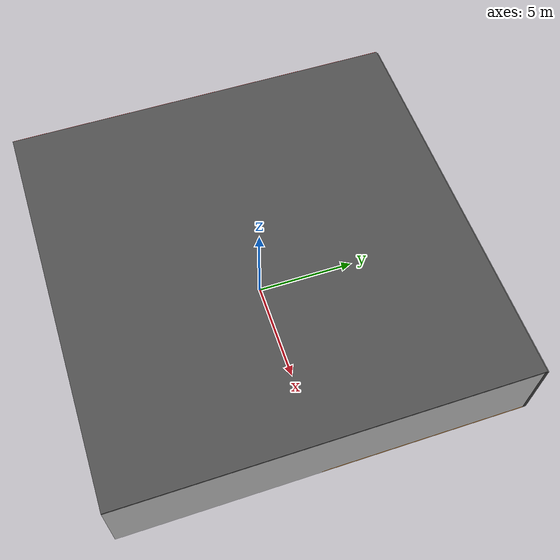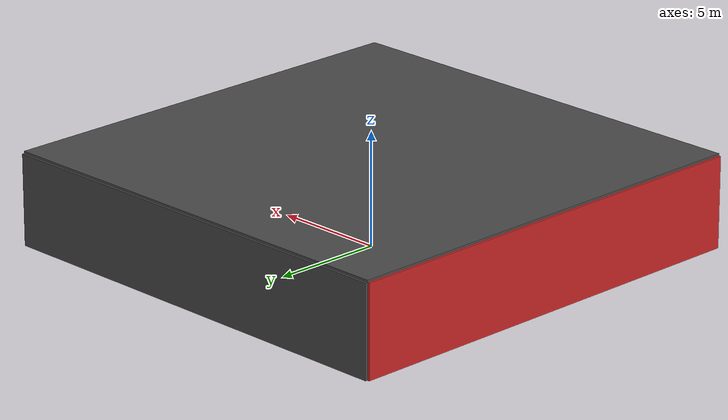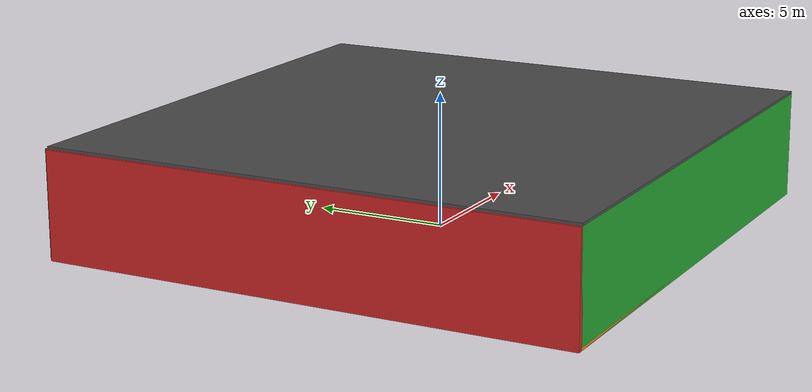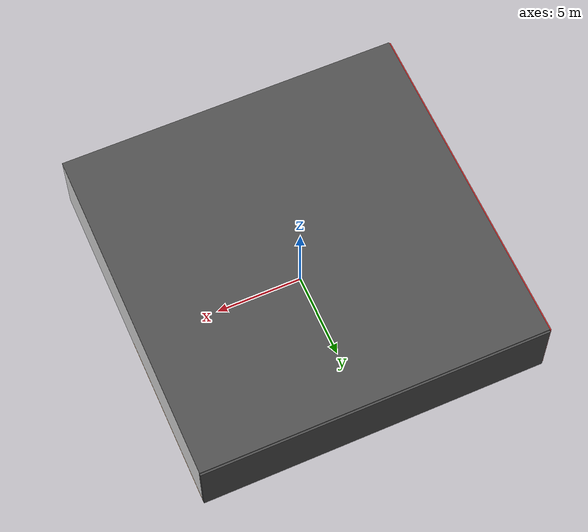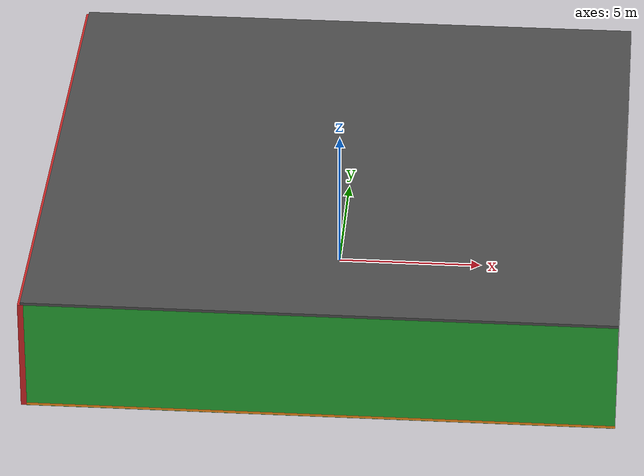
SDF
<sdf version="1.4">
 <world name="default">
  <physics type="ode">
   <max_step_size>0.001</max_step_size>
   <real_time_factor>1</real_time_factor>
   <real_time_update_rate>1000</real_time_update_rate>
   <gravity>0 0 -9.8</gravity>
  </physics>
  <scene><ambient>0.4 0.4 0.4 1</ambient><background>0.7 0.7 0.7 1</background><shadows>1</shadows></scene>
  <model name="Surrounding">
   <static>1</static>
   <link name="Ceiling">
    <collision name="Ceiling_Collision"><geometry><box><size>20 20 0.1</size></box></geometry></collision>
    <visual name="Ceiling_Visual">
     <geometry><box><size>20 20 0.1</size></box></geometry>
     <material>
      <script><uri>file://media/materials/scripts/gazebo.material</uri><name>Gazebo/DarkGrey</name></script>
     </material>
    </visual>
    <pose>0 0 4.05 0 0 0</pose>
   </link>
   <link name="Wall_South">
    <collision name="Wall_South_Collision">
     <geometry><box><size>20 0 4</size></box></geometry>
     <pose>0 0 2 0 -0 0</pose>
    </collision>
    <visual name="Wall_South_Visual">
     <pose>0 0 2 0 -0 0</pose>
     <geometry><box><size>20 0 4</size></box></geometry>
     <material>
      <script><uri>file://media/materials/scripts/gazebo.material</uri><name>Gazebo/GreenGlow</name></script>
     </material>
    </visual>
    <velocity_decay><linear>0</linear><angular>0</angular></velocity_decay>
    <pose>0 -10 0 0 -0 0</pose>
   </link>
   <link name="Wall_East">
    <collision name="Wall_21_Collision">
     <geometry><box><size>20 0 4</size></box></geometry>
     <pose>0 0 2 0 -0 0</pose>
    </collision>
    <visual name="Wall_21_Visual">
     <pose>0 0 2 0 -0 0</pose>
     <geometry><box><size>20 0 4</size></box></geometry>
     <material>
      <script><uri>file://media/materials/scripts/gazebo.material</uri><name>Gazebo/White</name></script>
     </material>
    </visual>
    <velocity_decay><linear>0</linear><angular>0</angular></velocity_decay>
    <pose>10 0 0 0 -0 1.5708</pose>
   </link>
   <link name="Wall_North">
    <collision name="Wall_22_Collision">
     <geometry><box><size>20 0.2 4</size></box></geometry>
     <pose>0 0 2 0 -0 0</pose>
    </collision>
    <visual name="Wall_22_Visual">
     <pose>0 0 2 0 -0 0</pose>
     <geometry><box><size>20 0.2 4</size></box></geometry>
     <material>
      <script><uri>file://media/materials/scripts/gazebo.material</uri><name>Gazebo/DarkGrey</name></script>
     </material>
    </visual>
    <velocity_decay><linear>0</linear><angular>0</angular></velocity_decay>
    <pose>0 10 0 0 -0 0</pose>
   </link>
   <link name="Wall_West">
    <collision name="Wall_23_Collision">
     <geometry><box><size>20 0.2 4</size></box></geometry>
     <pose>0 0 2 0 -0 0</pose>
    </collision>
    <visual name="Wall_23_Visual">
     <pose>0 0 2 0 -0 0</pose>
     <geometry><box><size>20 0.2 4</size></box></geometry>
     <material>
      <script><uri>file://media/materials/scripts/gazebo.material</uri><name>Gazebo/RedBright</name></script>
     </material>
    </visual>
    <velocity_decay><linear>0</linear><angular>0</angular></velocity_decay>
    <pose>-10 0 0 0 0 -1.5708</pose>
   </link>
   <link name="Ground_link">
    <collision name="collision">
     <pose>0 0 .05 0 -0 0</pose>
     <geometry><box><size>20 20 0.1</size></box></geometry>
    </collision>
    <visual name="visual">
     <pose>0 0 .05 0 -0 0</pose>
     <geometry><box><size>20 20 0.1</size></box></geometry>
     <material>
      <script><uri>file://media/materials/scripts/gazebo.material</uri><name>Gazebo/Orange</name></script>
     </material>
    </visual>
   </link>
   <static>1</static>
  </model>
  <spherical_coordinates>
   <surface_model>EARTH_WGS84</surface_model>
   <latitude_deg>0</latitude_deg>
   <longitude_deg>0</longitude_deg>
   <elevation>0</elevation>
   <heading_deg>0</heading_deg>
  </spherical_coordinates>
  <light name="lightball_0" type="diffuse">
   <diffuse>0.8 0.8 0.8 1</diffuse>
   <specular>0.2 0.2 0.2 1</specular>
   <attenuation>
    <range>100</range>
    <constant>0.7</constant>
    <linear>0.01</linear>
    <quadratic>0.001</quadratic>
   </attenuation>
   <direction>-0.5 0.1 -0.9</direction>
   <pose>4.00609678619 2.8762653523 0.688095722436 0 0 0</pose>
  </light>
  <light name="lightball_1" type="diffuse">
   <diffuse>0.8 0.8 0.8 1</diffuse>
   <specular>0.2 0.2 0.2 1</specular>
   <attenuation>
    <range>100</range>
    <constant>0.7</constant>
    <linear>0.01</linear>
    <quadratic>0.001</quadratic>
   </attenuation>
   <direction>-0.5 0.1 -0.9</direction>
   <pose>6.72041156492 0.78073367421 0.894961322288 0 0 0</pose>
  </light>
  <light name="lightball_2" type="diffuse">
   <diffuse>0.8 0.8 0.8 1</diffuse>
   <specular>0.2 0.2 0.2 1</specular>
   <attenuation>
    <range>100</range>
    <constant>0.7</constant>
    <linear>0.01</linear>
    <quadratic>0.001</quadratic>
   </attenuation>
   <direction>-0.5 0.1 -0.9</direction>
   <pose>-5.54089511228 -1.04385035221 0.627765740988 0 0 0</pose>
  </light>
  <light name="lightball_3" type="diffuse">
   <diffuse>0.8 0.8 0.8 1</diffuse>
   <specular>0.2 0.2 0.2 1</specular>
   <attenuation>
    <range>100</range>
    <constant>0.7</constant>
    <linear>0.01</linear>
    <quadratic>0.001</quadratic>
   </attenuation>
   <direction>-0.5 0.1 -0.9</direction>
   <pose>-7.26771894444 9.42980782986 2.75215830455 0 0 0</pose>
  </light>
  <light name="lightball_4" type="diffuse">
   <diffuse>0.8 0.8 0.8 1</diffuse>
   <specular>0.2 0.2 0.2 1</specular>
   <attenuation>
    <range>100</range>
    <constant>0.7</constant>
    <linear>0.01</linear>
    <quadratic>0.001</quadratic>
   </attenuation>
   <direction>-0.5 0.1 -0.9</direction>
   <pose>9.01798600657 5.12374882458 0.663921608846 0 0 0</pose>
  </light>
  <light name="lightball_5" type="diffuse">
   <diffuse>0.8 0.8 0.8 1</diffuse>
   <specular>0.2 0.2 0.2 1</specular>
   <attenuation>
    <range>100</range>
    <constant>0.7</constant>
    <linear>0.01</linear>
    <quadratic>0.001</quadratic>
   </attenuation>
   <direction>-0.5 0.1 -0.9</direction>
   <pose>-4.37158137455 6.44822008992 0.920951180694 0 0 0</pose>
  </light>
  <light name="lightball_6" type="diffuse">
   <diffuse>0.8 0.8 0.8 1</diffuse>
   <specular>0.2 0.2 0.2 1</specular>
   <attenuation>
    <range>100</range>
    <constant>0.7</constant>
    <linear>0.01</linear>
    <quadratic>0.001</quadratic>
   </attenuation>
   <direction>-0.5 0.1 -0.9</direction>
   <pose>0.152363953623 6.31997204235 0.631820503228 0 0 0</pose>
  </light>
  <light name="lightball_7" type="diffuse">
   <diffuse>0.8 0.8 0.8 1</diffuse>
   <specular>0.2 0.2 0.2 1</specular>
   <attenuation>
    <range>100</range>
    <constant>0.7</constant>
    <linear>0.01</linear>
    <quadratic>0.001</quadratic>
   </attenuation>
   <direction>-0.5 0.1 -0.9</direction>
   <pose>-3.60218494393 -9.64158496442 1.43817711422 0 0 0</pose>
  </light>
  <light name="lightball_8" type="diffuse">
   <diffuse>0.8 0.8 0.8 1</diffuse>
   <specular>0.2 0.2 0.2 1</specular>
   <attenuation>
    <range>100</range>
    <constant>0.7</constant>
    <linear>0.01</linear>
    <quadratic>0.001</quadratic>
   </attenuation>
   <direction>-0.5 0.1 -0.9</direction>
   <pose>-1.75035135193 -4.1221512394 3.87434479736 0 0 0</pose>
  </light>
  <light name="lightball_9" type="diffuse">
   <diffuse>0.8 0.8 0.8 1</diffuse>
   <specular>0.2 0.2 0.2 1</specular>
   <attenuation>
    <range>100</range>
    <constant>0.7</constant>
    <linear>0.01</linear>
    <quadratic>0.001</quadratic>
   </attenuation>
   <direction>-0.5 0.1 -0.9</direction>
   <pose>4.96110308765 -2.5389986383 1.77991056622 0 0 0</pose>
  </light>
  <light name="lightball_10" type="diffuse">
   <diffuse>0.8 0.8 0.8 1</diffuse>
   <specular>0.2 0.2 0.2 1</specular>
   <attenuation>
    <range>100</range>
    <constant>0.7</constant>
    <linear>0.01</linear>
    <quadratic>0.001</quadratic>
   </attenuation>
   <direction>-0.5 0.1 -0.9</direction>
   <pose>7.15731434422 -5.58245631579 2.44573751419 0 0 0</pose>
  </light>
  <light name="lightball_11" type="diffuse">
   <diffuse>0.8 0.8 0.8 1</diffuse>
   <specular>0.2 0.2 0.2 1</specular>
   <attenuation>
    <range>100</range>
    <constant>0.7</constant>
    <linear>0.01</linear>
    <quadratic>0.001</quadratic>
   </attenuation>
   <direction>-0.5 0.1 -0.9</direction>
   <pose>-6.0651350028 -6.65594454023 2.83419362577 0 0 0</pose>
  </light>
  <include><uri>model://cabinet</uri><pose>-5.16515225028 -8.10333283818 0 0 0 1.18944851041</pose></include>
  <include>
   <uri>model://textured_shapes</uri>
   <pose>-1.60490265087 4.46441237157 0 0 0 0.911258551466</pose>
  </include>
  <include>
   <uri>model://construction_cone</uri>
   <pose>4.96251746328 3.71475502729 0 0 0 0.036668751402</pose>
  </include>
  <include>
   <uri>model://textured_shapes</uri>
   <pose>4.10895661477 7.07999344995 0 0 0 0.281201449959</pose>
  </include>
  <include>
   <uri>model://robocup_3Dsim_goal</uri>
   <pose>8.04489338907 -7.57520077507 0 0 0 0.505431647461</pose>
  </include>
 </world>
</sdf>

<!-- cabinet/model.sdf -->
<sdf version="1.5">
  <model name="cabinet">
    <static>true</static>
    <link name="cabinet_bottom_plate">
      <inertial>
        <pose>0 0 -1 0 0 0</pose>
        <inertia>
          <ixx>2.050000</ixx>
          <ixy>0</ixy>
          <ixz>0</ixz>
          <iyy>2.050000</iyy>
          <iyz>0</iyz>
          <izz>2.050000</izz>
        </inertia>
        <mass>25.000000</mass>
      </inertial>
      <collision name="cabinet_bottom_plate_geom">
        <pose>0 0 0.010000 0 0 0</pose>
        <geometry>
          <box>
            <size>0.450000 0.450000 0.020000</size>
          </box>
        </geometry>
      </collision>
      <visual name="cabinet_bottom_plate_geom_visual">
        <pose>0 0 0.010000 0 0 0</pose>
        <geometry>
          <box>
            <size>0.450000 0.450000 0.020000</size>
          </box>
        </geometry>
        <material>
          <script>
            <uri>model://media/materials/scripts/gazebo.material</uri>
            <name>Gazebo/Wood</name>
          </script>
        </material>
      </visual>
      <collision name="cabinet_bottom_plate_geom_cabinet_back_plate">
        <pose>0.235000 0 0.510000 0 0 0</pose>
        <geometry>
          <box>
            <size>0.020000 0.450000 1.020000</size>
          </box>
        </geometry>
      </collision>
      <visual name="cabinet_bottom_plate_geom_cabinet_back_plate_visual">
        <pose>0.235000 0 0.510000 0 0 0</pose>
        <geometry>
          <box>
            <size>0.020000 0.450000 1.020000</size>
          </box>
        </geometry>
        <material>
          <script>
            <uri>model://media/materials/scripts/gazebo.material</uri>
            <name>Gazebo/Wood</name>
          </script>
        </material>
      </visual>
      <collision name="cabinet_bottom_plate_geom_cabinet_left_plate">
        <pose>0 0.235000 0.510000 0 0 0</pose>
        <geometry>
          <box>
            <size>0.450000 0.020000 1.020000</size>
          </box>
        </geometry>
      </collision>
      <visual name="cabinet_bottom_plate_geom_cabinet_left_plate_visual">
        <pose>0 0.235000 0.510000 0 0 0</pose>
        <geometry>
          <box>
            <size>0.450000 0.020000 1.020000</size>
          </box>
        </geometry>
        <material>
          <script>
            <uri>model://media/materials/scripts/gazebo.material</uri>
            <name>Gazebo/Wood</name>
          </script>
        </material>
      </visual>
      <collision name="cabinet_bottom_plate_geom_cabinet_middle_plate">
        <pose>0 0 0.510000 0 0 0</pose>
        <geometry>
          <box>
            <size>0.450000 0.450000 0.020000</size>
          </box>
        </geometry>
      </collision>
      <visual name="cabinet_bottom_plate_geom_cabinet_middle_plate_visual">
        <pose>0 0 0.510000 0 0 0</pose>
        <geometry>
          <box>
            <size>0.450000 0.450000 0.020000</size>
          </box>
        </geometry>
        <material>
          <script>
            <uri>model://media/materials/scripts/gazebo.material</uri>
            <name>Gazebo/Wood</name>
          </script>
        </material>
      </visual>
      <collision name="cabinet_bottom_plate_geom_cabinet_right_plate">
        <pose>0 -0.235000 0.510000 0 0 0</pose>
        <geometry>
          <box>
            <size>0.450000 0.020000 1.020000</size>
          </box>
        </geometry>
      </collision>
      <visual name="cabinet_bottom_plate_geom_cabinet_right_plate_visual">
        <pose>0 -0.235000 0.510000 0 0 0</pose>
        <geometry>
          <box>
            <size>0.450000 0.020000 1.020000</size>
          </box>
        </geometry>
        <material>
          <script>
            <uri>model://media/materials/scripts/gazebo.material</uri>
            <name>Gazebo/Wood</name>
          </script>
        </material>
      </visual>
      <collision name="cabinet_bottom_plate_geom_cabinet_top_plate">
        <pose>0 0 1.010000 0 0 0</pose>
        <geometry>
          <box>
            <size>0.450000 0.450000 0.020000</size>
          </box>
        </geometry>
      </collision>
      <visual name="cabinet_bottom_plate_geom_cabinet_top_plate_visual">
        <pose>0 0 1.010000 0 0 0</pose>
        <geometry>
          <box>
            <size>0.450000 0.450000 0.020000</size>
          </box>
        </geometry>
        <material>
          <script>
            <uri>model://media/materials/scripts/gazebo.material</uri>
            <name>Gazebo/Wood</name>
          </script>
        </material>
      </visual>
    </link>
  </model>
</sdf>

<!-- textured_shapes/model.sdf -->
<sdf version="1.6">
  <model name="textured_shapes">
    <pose>0 0 0.5 0 0 0</pose>
    <link name="box">
      <pose>0 -1.5 0 0 0 0</pose>
      <collision name="collision">
        <geometry>
          <box>
            <size>1 1 1</size>
          </box>
        </geometry>
      </collision>
      <visual name="visual">
        <geometry>
          <box>
            <size>1 1 1</size>
          </box>
        </geometry>
        <material>
          <script>
            <uri>model://../model_source/models/textured_shapes/materials/scripts</uri>
            <uri>model://../model_source/models/textured_shapes/materials/textures</uri>
            <name>TexturedShape/Squares</name>
          </script>
        </material>
      </visual>
    </link>
    <link name="sphere">
      <collision name="collision">
        <geometry>
          <sphere>
            <radius>0.5</radius>
          </sphere>
        </geometry>
      </collision>
      <visual name="visual">
        <geometry>
          <sphere>
            <radius>0.5</radius>
          </sphere>
        </geometry>
        <material>
          <script>
            <uri>model://../model_source/models/textured_shapes/materials/scripts</uri>
            <uri>model://../model_source/models/textured_shapes/materials/textures</uri>
            <name>TexturedShape/Squares</name>
          </script>
        </material>
      </visual>
    </link>
    <link name="cylinder">
      <pose>0 1.5 0 0 0 0</pose>
      <collision name="collision">
        <geometry>
          <cylinder>
            <radius>0.5</radius>
            <length>1</length>
          </cylinder>
        </geometry>
      </collision>
      <visual name="visual">
        <geometry>
          <cylinder>
            <radius>0.5</radius>
            <length>1</length>
          </cylinder>
        </geometry>
        <material>
          <script>
            <uri>model://../model_source/models/textured_shapes/materials/scripts</uri>
            <uri>model://../model_source/models/textured_shapes/materials/textures</uri>
            <name>TexturedShape/Squares</name>
          </script>
        </material>
      </visual>
    </link>
  </model>
</sdf>

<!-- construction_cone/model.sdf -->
<sdf version="1.5">
  <model name="Construction Cone">
    <link name="link">
      <collision name="collision">
        <geometry>
          <mesh>
            <scale>10 10 10</scale>
            <uri>file://isr-testbed/construction_cone/meshes/construction_cone.dae</uri>
          </mesh>
        </geometry>
      </collision>
      <visual name="visual">
        <geometry>
          <mesh>
            <scale>10 10 10</scale>
            <uri>file://isr-testbed/construction_cone/meshes/construction_cone.dae</uri>
          </mesh>
        </geometry>
      </visual>
    </link>
  </model>
</sdf>

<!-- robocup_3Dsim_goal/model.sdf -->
<sdf version="1.5">
  <model name="robocup_3d_goal">
    <static>true</static>
    <link name="left_post">
      <pose>0 1.05 0.45 0 0 0</pose>
      <collision name="collision">
        <geometry>
          <cylinder>
            <radius>0.05</radius>
            <length>0.9</length>
          </cylinder>
        </geometry>
      </collision>
      <visual name="visual">
        <geometry>
          <cylinder>
            <radius>0.05</radius>
            <length>0.9</length>
          </cylinder>
        </geometry>
        <material>
          <script>
            <uri>file://media/materials/scripts/gazebo.material</uri>
            <name>Gazebo/ZincYellow</name>
          </script>
        </material>
      </visual>
    </link>
    <link name="left_support_horiz_lower">
      <pose>0.30 1.05 0.01 0 0 0</pose>
      <collision name="collision">
        <geometry>
          <box>
            <size>0.50 0.02 0.02</size>
          </box>
        </geometry>
      </collision>
      <visual name="visual">
        <geometry>
          <box>
            <size>0.50 0.02 0.02</size>
          </box>
        </geometry>
        <material>
          <script>
            <uri>file://media/materials/scripts/gazebo.material</uri>
            <name>Gazebo/White</name>
          </script>
        </material>
      </visual>
    </link>
    <link name="left_support_horiz_upper">
      <pose>0.30 1.05 0.79 0 0 0</pose>
      <collision name="collision">
        <geometry>
          <box>
            <size>0.50 0.02 0.02</size>
          </box>
        </geometry>
      </collision>
      <visual name="visual">
        <geometry>
          <box>
            <size>0.50 0.02 0.02</size>
          </box>
        </geometry>
        <material>
          <script>
            <uri>file://media/materials/scripts/gazebo.material</uri>
            <name>Gazebo/White</name>
          </script>
        </material>
      </visual>
    </link>
    <link name="left_support_vertical">
      <pose>0.56 1.05 0.4 0 1.5708 0</pose>
      <collision name="collision">
        <geometry>
          <box>
            <size>0.80 0.02 0.02</size>
          </box>
        </geometry>
      </collision>
      <visual name="visual">
        <geometry>
          <box>
            <size>0.80 0.02 0.02</size>
          </box>
        </geometry>
        <material>
          <script>
            <uri>file://media/materials/scripts/gazebo.material</uri>
            <name>Gazebo/White</name>
          </script>
        </material>
      </visual>
    </link>
    <link name="right_support_horiz_lower">
      <pose>0.30 -1.05 0.01 0 0 0</pose>
      <collision name="collision">
        <geometry>
          <box>
            <size>0.50 0.02 0.02</size>
          </box>
        </geometry>
      </collision>
      <visual name="visual">
        <geometry>
          <box>
            <size>0.50 0.02 0.02</size>
          </box>
        </geometry>
        <material>
          <script>
            <uri>file://media/materials/scripts/gazebo.material</uri>
            <name>Gazebo/White</name>
          </script>
        </material>
      </visual>
    </link>
    <link name="right_support_horiz_upper">
      <pose>0.30 -1.05 0.79 0 0 0</pose>
      <collision name="collision">
        <geometry>
          <box>
            <size>0.50 0.02 0.02</size>
          </box>
        </geometry>
      </collision>
      <visual name="visual">
        <geometry>
          <box>
            <size>0.50 0.02 0.02</size>
          </box>
        </geometry>
        <material>
          <script>
            <uri>file://media/materials/scripts/gazebo.material</uri>
            <name>Gazebo/White</name>
          </script>
        </material>
      </visual>
    </link>
    <link name="right_support_vertical">
      <pose>0.56 -1.05 0.4 0 1.5708 0</pose>
      <collision name="collision">
        <geometry>
          <box>
            <size>0.80 0.02 0.02</size>
          </box>
        </geometry>
      </collision>
      <visual name="visual">
        <geometry>
          <box>
            <size>0.80 0.02 0.02</size>
          </box>
        </geometry>
        <material>
          <script>
            <uri>file://media/materials/scripts/gazebo.material</uri>
            <name>Gazebo/White</name>
          </script>
        </material>
      </visual>
    </link>
    <link name="center_support_horiz_lower">
      <pose>0.56 0 0.01 0 1.5708 0</pose>
      <collision name="collision">
        <geometry>
          <box>
            <size>0.02 2.08 0.02</size>
          </box>
        </geometry>
      </collision>
      <visual name="visual">
        <geometry>
          <box>
            <size>0.02 2.08 0.02</size>
          </box>
        </geometry>
        <material>
          <script>
            <uri>file://media/materials/scripts/gazebo.material</uri>
            <name>Gazebo/White</name>
          </script>
        </material>
      </visual>
    </link>
    <link name="center_support_horiz_upper">
      <pose>0.56 0 0.79 0 1.5708 0</pose>
      <collision name="collision">
        <geometry>
          <box>
            <size>0.02 2.08 0.02</size>
          </box>
        </geometry>
      </collision>
      <visual name="visual">
        <geometry>
          <box>
            <size>0.02 2.08 0.02</size>
          </box>
        </geometry>
        <material>
          <script>
            <uri>file://media/materials/scripts/gazebo.material</uri>
            <name>Gazebo/White</name>
          </script>
        </material>
      </visual>
    </link>
    <link name="right_post">
      <pose>0 -1.05 0.45 0 0 0</pose>
      <collision name="collision">
        <geometry>
          <cylinder>
            <radius>0.05</radius>
            <length>0.9</length>
          </cylinder>
        </geometry>
      </collision>
      <visual name="visual">
        <geometry>
          <cylinder>
            <radius>0.05</radius>
            <length>0.9</length>
          </cylinder>
        </geometry>
        <material>
          <script>
            <uri>file://media/materials/scripts/gazebo.material</uri>
            <name>Gazebo/ZincYellow</name>
          </script>
        </material>
      </visual>
    </link>
    <link name="crossbar">
      <pose>0 0 0.85 1.57 1.57 0</pose>
      <collision name="collision">
        <geometry>
          <cylinder>
            <radius>0.05</radius>
            <length>2.0</length>
          </cylinder>
        </geometry>
      </collision>
      <visual name="visual">
        <geometry>
          <cylinder>
            <radius>0.05</radius>
            <length>2.0</length>
          </cylinder>
        </geometry>
        <material>
          <script>
            <uri>file://media/materials/scripts/gazebo.material</uri>
            <name>Gazebo/ZincYellow</name>
          </script>
        </material>
      </visual>
    </link>
    <link name="center_net">
      <pose>0.56 0 0.40 0 0 0</pose>
      <collision name="collision">
        <geometry>
          <box>
            <size>0.01 2.1 0.80</size>
          </box>
        </geometry>
      </collision>
      <visual name="visual">
        <geometry>
          <box>
            <size>0.01 2.1 0.80</size>
          </box>
        </geometry>
        <material>
          <script>
            <uri>model://../model_source/models/robocup09_spl_field/materials/scripts/</uri>
            <uri>model://../model_source/models/robocup09_spl_field/materials/textures/</uri>
            <name>RoboCup/Net</name>
          </script>
        </material>
      </visual>
    </link>
    <link name="left_net">
      <pose>0.30 1.05 0.40 0 0 0</pose>
      <collision name="collision">
        <geometry>
          <box>
            <size>0.50 0.01 0.76</size>
          </box>
        </geometry>
      </collision>
      <visual name="visual">
        <geometry>
          <box>
            <size>0.50 0.01 0.76</size>
          </box>
        </geometry>
        <material>
          <script>
            <uri>model://../model_source/models/robocup09_spl_field/materials/scripts/</uri>
            <uri>model://../model_source/models/robocup09_spl_field/materials/textures/</uri>
            <name>RoboCup/Net</name>
          </script>
        </material>
      </visual>
    </link>
    <link name="right_net">
      <pose>0.30 -1.05 0.40 0 0 0</pose>
      <collision name="collision">
        <geometry>
          <box>
            <size>0.50 0.01 0.76</size>
          </box>
        </geometry>
      </collision>
      <visual name="visual">
        <geometry>
          <box>
            <size>0.50 0.01 0.76</size>
          </box>
        </geometry>
        <material>
          <script>
            <uri>model://../model_source/models/robocup09_spl_field/materials/scripts/</uri>
            <uri>model://../model_source/models/robocup09_spl_field/materials/textures/</uri>
            <name>RoboCup/Net</name>
          </script>
        </material>
      </visual>
    </link>
  </model>
</sdf>
